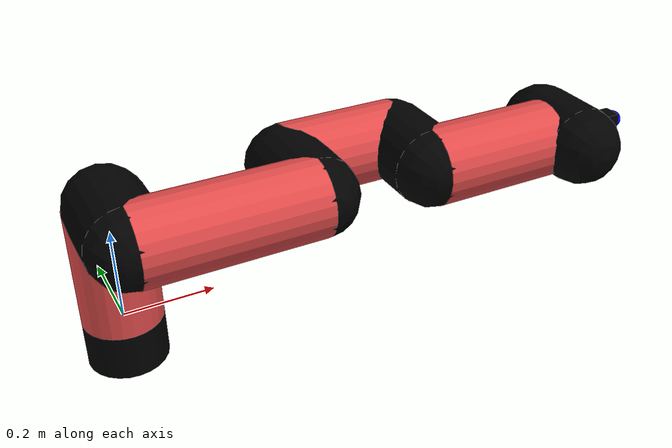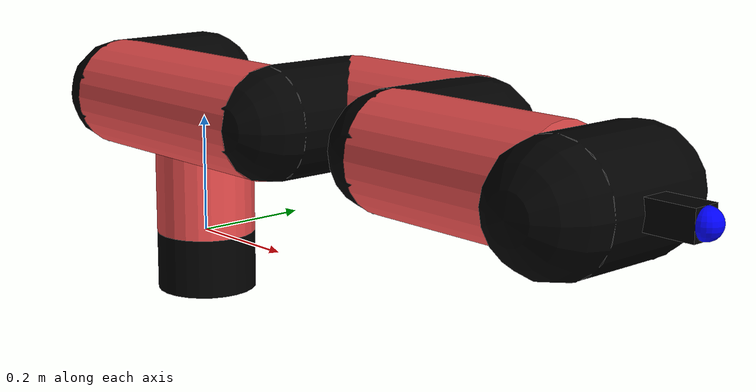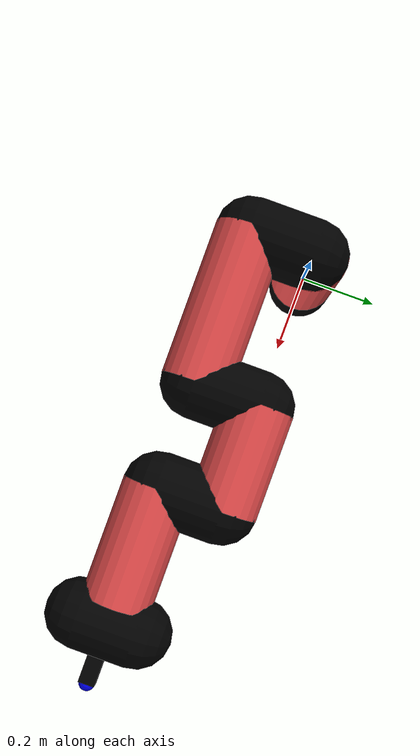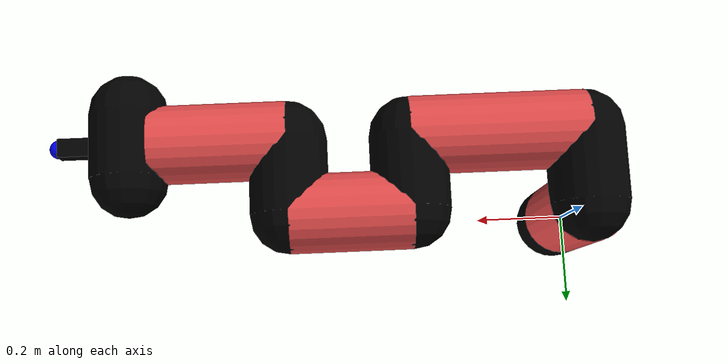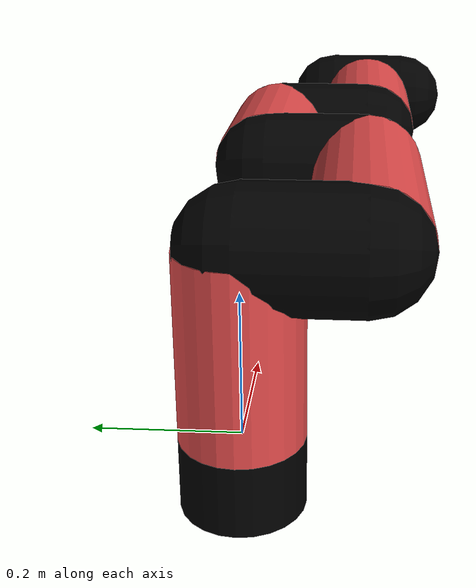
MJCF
<mujoco model="manipulator">
		<compiler angle="degree" coordinate="local" inertiafromgeom="auto" meshdir="meshes/"/>
		<option gravity="0 0 0" integrator="RK4" iterations="30" timestep="0.01"/>

		<default>
		<joint armature="1" limited="true" stiffness="10" damping="15" frictionloss="5.0"/>
		<geom conaffinity="1" condim="3" contype="1" friction=".5 .1 .1" margin="0.002"/>
		<motor ctrllimited="true"/>
		<position ctrllimited="true"/>
		</default>

		<asset>
		<texture builtin="gradient" height="100" rgb1="1.0 1.0 1.0" rgb2="1.0 1.0 1.0" type="skybox" width="100"/>
		<texture builtin="flat" height="32" name="arm_tex" rgb1="0.9 0.3 0.3" type="2d" width="32"/>
		<texture builtin="flat" height="32" name="gripper_tex" rgb1="0.0 0.0 0.0" type="cube" width="32"/>

		<material name="arm_mat" shininess="0.1" specular="0.1" texture="arm_tex"/>
		<material name="gripper_mat" shininess="1" specular="1" texture="gripper_tex"/>
		</asset>

		<worldbody>
		<light cutoff="45" diffuse=".8 .8 .8" dir="0 0.16 -1" directional="false" name="light" pos="0 -2.0 8.0" specular="0.3 0.3 0.3"/>

		<body name="base_link" pos="0 0 -0.1">
		<geom fromto="0 0 0 0 0 0.1" material="arm_mat" name="base_link" rgba="0.0 0.0 0.0 1" size="0.085" type="cylinder"/>
		</body>

		<body name="l1" pos="0 0 0">
<geom fromto="0 0 0 0 0 0.26" material="arm_mat" name="l1" rgba="0.9 0.3 0.3 1" size="0.085" type="cylinder"/>
<geom fromto="0 0 0.26 0 -0.16 0.26" material="arm_mat" name="l1_ex" rgba="0.0 0.0 0.0 1" size="0.085" type="capsule"/>
<joint axis="0 0 1" name="j1" pos="0 0 0" range="-90 90" damping="36.68" frictionloss="12.01"/>

<body name="l2" pos="0 -0.16 0.26">
<geom fromto="0 0 0 0.38 0 0" material="arm_mat" name="l2" rgba="0.9 0.3 0.3 1" size="0.085" type="cylinder"/>
<geom fromto="0.38 0 0 0.38 0.16 0" material="arm_mat" name="l2_ex" rgba="0.0 0.0 0.0 1" size="0.085" type="capsule"/>
<joint axis="0.09 0.96 0.03" name="j2" pos="0 0 0" range="-90 60" damping="30.62" frictionloss="12.2"/>

<body name="l3" pos="0.38 0.16 0">
<geom fromto="0 0 0 0.26 0 0" material="arm_mat" name="l3" rgba="0.9 0.3 0.3 1" size="0.085" type="cylinder"/>
<geom fromto="0.26 0 0 0.26 -0.16 0" material="arm_mat" name="l3_ex" rgba="0.0 0.0 0.0 1" size="0.085" type="capsule"/>
<joint axis="-0.18 0.85 0.15" name="j3" pos="0 0 0" range="-30 60" damping="28.83" frictionloss="7.65"/>

<body name="l4" pos="0.26 -0.16 0">
<geom fromto="0 0 0 0.29 0 0" material="arm_mat" name="l4" rgba="0.9 0.3 0.3 1" size="0.085" type="cylinder"/>
<joint axis="0.23 0.91 0.1" name="j4" pos="0 0 0" range="-30 60" damping="29.94" frictionloss="8.67"/>

<body name="gripper" pos="0.29 0 0">
<geom fromto="0.05 -0.07 0 0.05 0.07 0" material="gripper_mat" name="gripper" rgba="0.0 0.0 0.0 1" size="0.085" type="capsule"/><joint axis="1 0 0" name="j5" pos="0 0 0" range="-90 90" damping="15" frictionloss="5.0"/><body name="finger" pos="0.1 0 0">
<geom fromto="0 0.0 0 0.1 0.0 0" material="gripper_mat" name="finger" rgba="0.0 0.0 0.0 1" size="0.020 0.06 0.06" type="box"/>
</body>
<site name="current" pos="0.2 0. 0.0" rgba="0. 0. 1.0 1" size="0.02" type="sphere"/>
</body>
</body>
</body>
</body>
</body>
</worldbody>
<actuator>
<motor ctrllimited="true" ctrlrange="-1.0 1.0" joint="j1" gear="61.22"/>
<motor ctrllimited="true" ctrlrange="-1.0 1.0" joint="j2" gear="75.25"/>
<motor ctrllimited="true" ctrlrange="-1.0 1.0" joint="j3" gear="68.87"/>
<motor ctrllimited="true" ctrlrange="-1.0 1.0" joint="j4" gear="69.23"/>
<motor ctrllimited="true" ctrlrange="-1.0 1.0" joint="j5" gear="80"/>
</actuator>
</mujoco>
